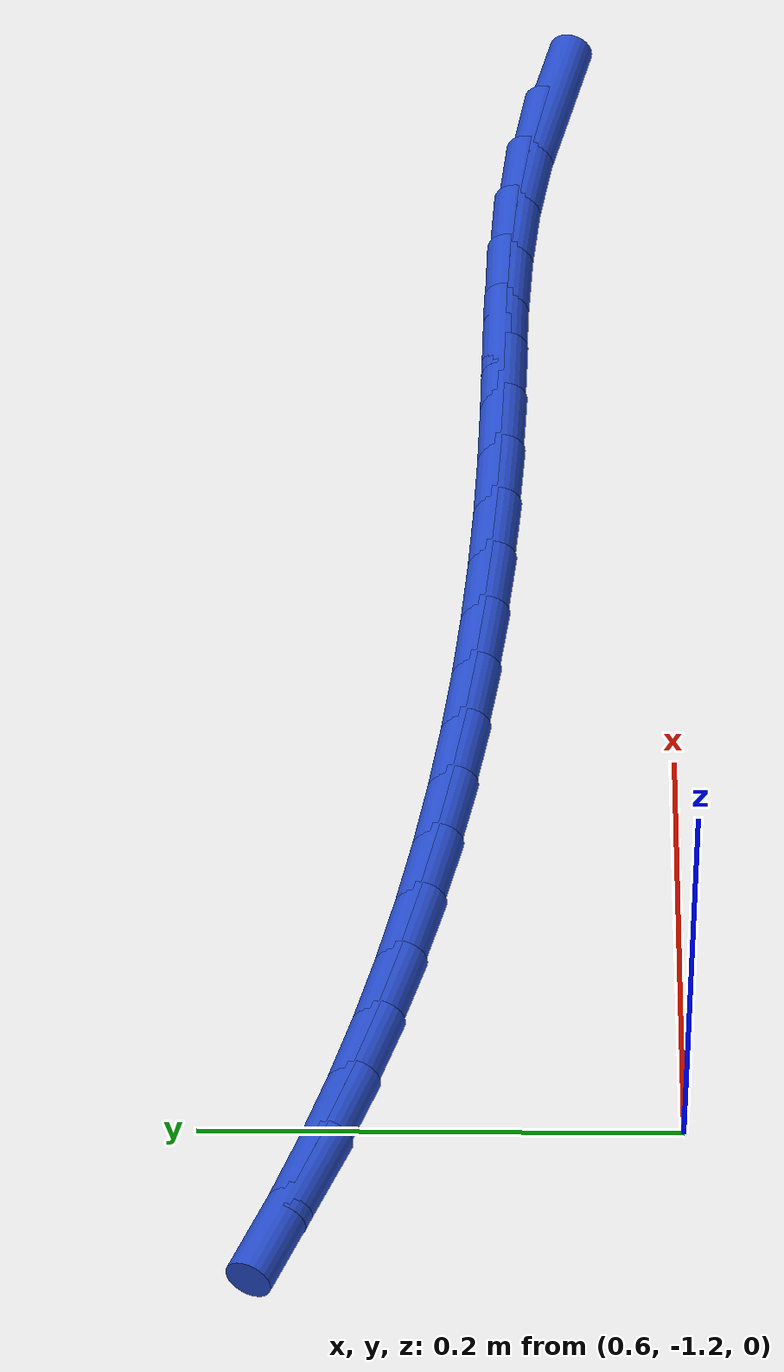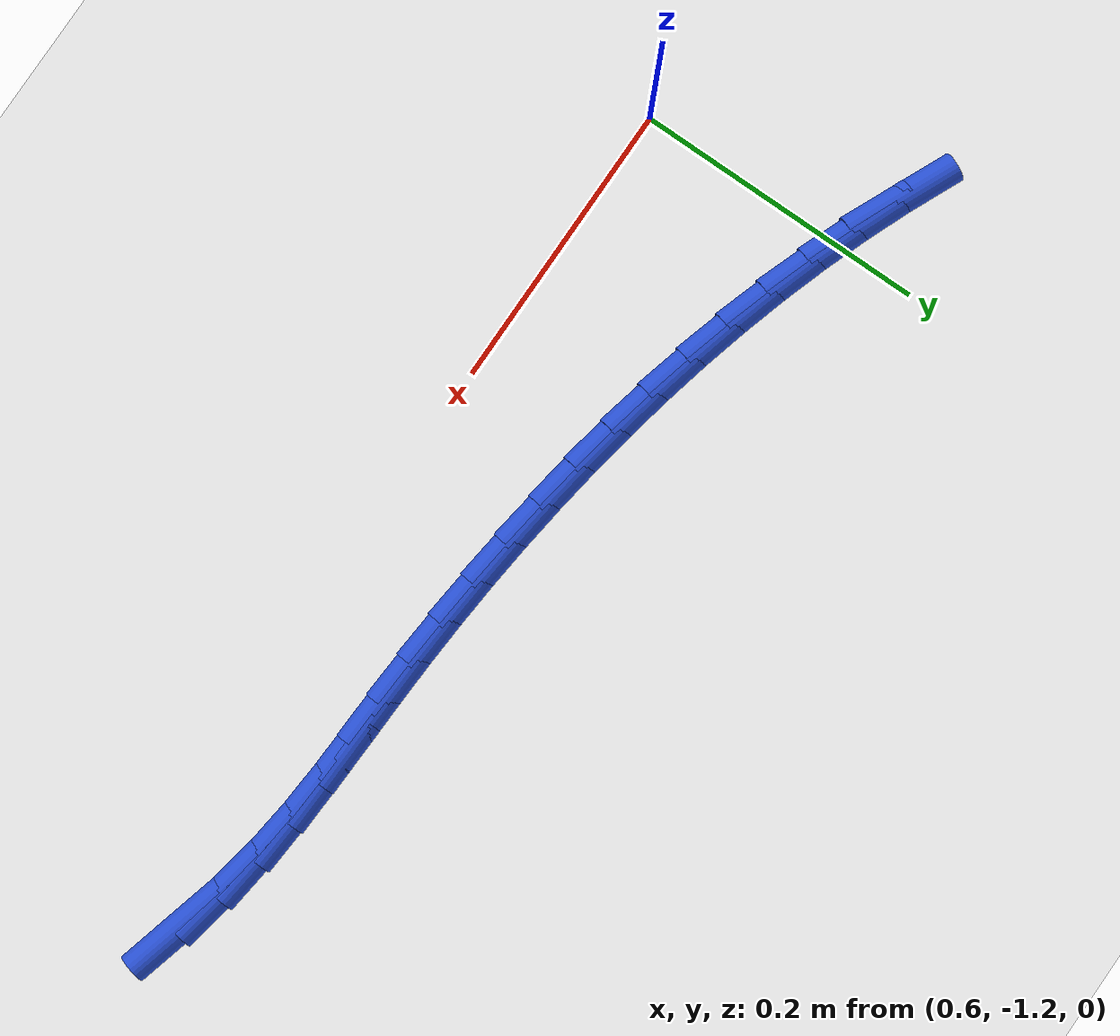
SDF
<sdf version="1.6">
 <world name="default">
  <model name="ground_plane">
   <static>1</static>
   <link name="link">
    <collision name="collision">
     <geometry><plane><normal>0 0 1</normal><size>100 100</size></plane></geometry>
     <surface><friction><ode><mu>100</mu><mu2>50</mu2></ode></friction></surface>
    </collision>
    <visual name="visual">
     <cast_shadows>0</cast_shadows>
     <geometry><plane><normal>0 0 1</normal><size>100 100</size></plane></geometry>
     <material>
      <script><uri>file://media/materials/scripts/gazebo.material</uri><name>Gazebo/WhiteGlow</name></script>
     </material>
    </visual>
   </link>
  </model>
  <model name="line">
   <link name="link_192">
    <pose>1.1886813940478667 -1.150262956783005 0.01 0 1.57 -0.2552626584688657</pose>
    <collision name="collision">
     <geometry><cylinder><radius>0.01</radius><length>0.08</length></cylinder></geometry>
    </collision>
    <visual name="visual">
     <material>
      <script><name>Gazebo/Blue</name><uri>file://media/materials/scripts/gazebo.material</uri></script>
     </material>
     <geometry><cylinder><radius>0.01</radius><length>0.08</length></cylinder></geometry>
    </visual>
   </link>
   <link name="link_193">
    <pose>1.1543357410519695 -1.1413002766937062 0.01 0 1.57 -0.180400062615272</pose>
    <collision name="collision">
     <geometry><cylinder><radius>0.01</radius><length>0.08</length></cylinder></geometry>
    </collision>
    <visual name="visual">
     <material>
      <script><name>Gazebo/Blue</name><uri>file://media/materials/scripts/gazebo.material</uri></script>
     </material>
     <geometry><cylinder><radius>0.01</radius><length>0.08</length></cylinder></geometry>
    </visual>
   </link>
   <link name="link_194">
    <pose>1.121331490273652 -1.135280866747379 0.01 0 1.57 -0.1165325160379313</pose>
    <collision name="collision">
     <geometry><cylinder><radius>0.01</radius><length>0.08</length></cylinder></geometry>
    </collision>
    <visual name="visual">
     <material>
      <script><name>Gazebo/Blue</name><uri>file://media/materials/scripts/gazebo.material</uri></script>
     </material>
     <geometry><cylinder><radius>0.01</radius><length>0.08</length></cylinder></geometry>
    </visual>
   </link>
   <link name="link_195">
    <pose>1.0893490187320463 -1.1315369060602518 0.01 0 1.57 -0.06819048947828085</pose>
    <collision name="collision">
     <geometry><cylinder><radius>0.01</radius><length>0.08</length></cylinder></geometry>
    </collision>
    <visual name="visual">
     <material>
      <script><name>Gazebo/Blue</name><uri>file://media/materials/scripts/gazebo.material</uri></script>
     </material>
     <geometry><cylinder><radius>0.01</radius><length>0.08</length></cylinder></geometry>
    </visual>
   </link>
   <link name="link_196">
    <pose>1.0580687034462841 -1.1294005737485537 0.01 0 1.57 -0.03870592510255532</pose>
    <collision name="collision">
     <geometry><cylinder><radius>0.01</radius><length>0.08</length></cylinder></geometry>
    </collision>
    <visual name="visual">
     <material>
      <script><name>Gazebo/Blue</name><uri>file://media/materials/scripts/gazebo.material</uri></script>
     </material>
     <geometry><cylinder><radius>0.01</radius><length>0.08</length></cylinder></geometry>
    </visual>
   </link>
   <link name="link_197">
    <pose>1.027170921435497 -1.1282040489285121 0.01 0 1.57 -0.029974546774439687</pose>
    <collision name="collision">
     <geometry><cylinder><radius>0.01</radius><length>0.08</length></cylinder></geometry>
    </collision>
    <visual name="visual">
     <material>
      <script><name>Gazebo/Blue</name><uri>file://media/materials/scripts/gazebo.material</uri></script>
     </material>
     <geometry><cylinder><radius>0.01</radius><length>0.08</length></cylinder></geometry>
    </visual>
   </link>
   <link name="link_198">
    <pose>0.9963360497188172 -1.1272795107163562 0.01 0 1.57 -0.04132637685410862</pose>
    <collision name="collision">
     <geometry><cylinder><radius>0.01</radius><length>0.08</length></cylinder></geometry>
    </collision>
    <visual name="visual">
     <material>
      <script><name>Gazebo/Blue</name><uri>file://media/materials/scripts/gazebo.material</uri></script>
     </material>
     <geometry><cylinder><radius>0.01</radius><length>0.08</length></cylinder></geometry>
    </visual>
   </link>
   <link name="link_199">
    <pose>0.965265778211779 -1.1259947574868887 0.01 0 1.57 -0.06065985437152102</pose>
    <collision name="collision">
     <geometry><cylinder><radius>0.01</radius><length>0.08</length></cylinder></geometry>
    </collision>
    <visual name="visual">
     <material>
      <script><name>Gazebo/Blue</name><uri>file://media/materials/scripts/gazebo.material</uri></script>
     </material>
     <geometry><cylinder><radius>0.01</radius><length>0.08</length></cylinder></geometry>
    </visual>
   </link>
   <link name="link_200">
    <pose>0.9338839128167312 -1.1240887997964213 0.01 0 1.57 -0.08097760928714258</pose>
    <collision name="collision">
     <geometry><cylinder><radius>0.01</radius><length>0.08</length></cylinder></geometry>
    </collision>
    <visual name="visual">
     <material>
      <script><name>Gazebo/Blue</name><uri>file://media/materials/scripts/gazebo.material</uri></script>
     </material>
     <geometry><cylinder><radius>0.01</radius><length>0.08</length></cylinder></geometry>
    </visual>
   </link>
   <link name="link_201">
    <pose>0.9022462531259806 -1.1215212431539194 0.01 0 1.57 -0.1022506918384899</pose>
    <collision name="collision">
     <geometry><cylinder><radius>0.01</radius><length>0.08</length></cylinder></geometry>
    </collision>
    <visual name="visual">
     <material>
      <script><name>Gazebo/Blue</name><uri>file://media/materials/scripts/gazebo.material</uri></script>
     </material>
     <geometry><cylinder><radius>0.01</radius><length>0.08</length></cylinder></geometry>
    </visual>
   </link>
   <link name="link_202">
    <pose>0.8704103421985019 -1.118254606843598 0.01 0 1.57 -0.12454341411067339</pose>
    <collision name="collision">
     <geometry><cylinder><radius>0.01</radius><length>0.08</length></cylinder></geometry>
    </collision>
    <visual name="visual">
     <material>
      <script><name>Gazebo/Blue</name><uri>file://media/materials/scripts/gazebo.material</uri></script>
     </material>
     <geometry><cylinder><radius>0.01</radius><length>0.08</length></cylinder></geometry>
    </visual>
   </link>
   <link name="link_203">
    <pose>0.8384337230932695 -1.1142514101496723 0.01 0 1.57 -0.1479218773052417</pose>
    <collision name="collision">
     <geometry><cylinder><radius>0.01</radius><length>0.08</length></cylinder></geometry>
    </collision>
    <visual name="visual">
     <material>
      <script><name>Gazebo/Blue</name><uri>file://media/materials/scripts/gazebo.material</uri></script>
     </material>
     <geometry><cylinder><radius>0.01</radius><length>0.08</length></cylinder></geometry>
    </visual>
   </link>
   <link name="link_204">
    <pose>0.8063739388692577 -1.1094741723563573 0.01 0 1.57 -0.1724536591377894</pose>
    <collision name="collision">
     <geometry><cylinder><radius>0.01</radius><length>0.08</length></cylinder></geometry>
    </collision>
    <visual name="visual">
     <material>
      <script><name>Gazebo/Blue</name><uri>file://media/materials/scripts/gazebo.material</uri></script>
     </material>
     <geometry><cylinder><radius>0.01</radius><length>0.08</length></cylinder></geometry>
    </visual>
   </link>
   <link name="link_205">
    <pose>0.7742885325854414 -1.1038854127478683 0.01 0 1.57 -0.19820732452280015</pose>
    <collision name="collision">
     <geometry><cylinder><radius>0.01</radius><length>0.08</length></cylinder></geometry>
    </collision>
    <visual name="visual">
     <material>
      <script><name>Gazebo/Blue</name><uri>file://media/materials/scripts/gazebo.material</uri></script>
     </material>
     <geometry><cylinder><radius>0.01</radius><length>0.08</length></cylinder></geometry>
    </visual>
   </link>
   <link name="link_206">
    <pose>0.7422350473007947 -1.0974476506084205 0.01 0 1.57 -0.22525172722043452</pose>
    <collision name="collision">
     <geometry><cylinder><radius>0.01</radius><length>0.08</length></cylinder></geometry>
    </collision>
    <visual name="visual">
     <material>
      <script><name>Gazebo/Blue</name><uri>file://media/materials/scripts/gazebo.material</uri></script>
     </material>
     <geometry><cylinder><radius>0.01</radius><length>0.08</length></cylinder></geometry>
    </visual>
   </link>
   <link name="link_207">
    <pose>0.7102710260742923 -1.0901234052222288 0.01 0 1.57 -0.25365506645905933</pose>
    <collision name="collision">
     <geometry><cylinder><radius>0.01</radius><length>0.08</length></cylinder></geometry>
    </collision>
    <visual name="visual">
     <material>
      <script><name>Gazebo/Blue</name><uri>file://media/materials/scripts/gazebo.material</uri></script>
     </material>
     <geometry><cylinder><radius>0.01</radius><length>0.08</length></cylinder></geometry>
    </visual>
   </link>
   <link name="link_208">
    <pose>0.6784540119649082 -1.0818751958735082 0.01 0 1.57 -0.28348366070245007</pose>
    <collision name="collision">
     <geometry><cylinder><radius>0.01</radius><length>0.08</length></cylinder></geometry>
    </collision>
    <visual name="visual">
     <material>
      <script><name>Gazebo/Blue</name><uri>file://media/materials/scripts/gazebo.material</uri></script>
     </material>
     <geometry><cylinder><radius>0.01</radius><length>0.08</length></cylinder></geometry>
    </visual>
   </link>
   <link name="link_209">
    <pose>0.6468415480316183 -1.0726655418464746 0.01 0 1.57 -0.314800401786797</pose>
    <collision name="collision">
     <geometry><cylinder><radius>0.01</radius><length>0.08</length></cylinder></geometry>
    </collision>
    <visual name="visual">
     <material>
      <script><name>Gazebo/Blue</name><uri>file://media/materials/scripts/gazebo.material</uri></script>
     </material>
     <geometry><cylinder><radius>0.01</radius><length>0.08</length></cylinder></geometry>
    </visual>
   </link>
   <link name="link_210">
    <pose>0.6154911773333949 -1.0624569624253422 0.01 0 1.57 -0.34766304865699915</pose>
    <collision name="collision">
     <geometry><cylinder><radius>0.01</radius><length>0.08</length></cylinder></geometry>
    </collision>
    <visual name="visual">
     <material>
      <script><name>Gazebo/Blue</name><uri>file://media/materials/scripts/gazebo.material</uri></script>
     </material>
     <geometry><cylinder><radius>0.01</radius><length>0.08</length></cylinder></geometry>
    </visual>
   </link>
   <link name="link_211">
    <pose>0.5844604587620186 -1.0512119759394467 0.01 0 1.57 -0.38238449006679043</pose>
    <collision name="collision">
     <geometry><cylinder><radius>0.01</radius><length>0.08</length></cylinder></geometry>
    </collision>
    <visual name="visual">
     <material>
      <script><name>Gazebo/Blue</name><uri>file://media/materials/scripts/gazebo.material</uri></script>
     </material>
     <geometry><cylinder><radius>0.01</radius><length>0.08</length></cylinder></geometry>
    </visual>
   </link>
   <link name="link_212">
    <pose>0.5538271898001058 -1.0388918801242601 0.01 0 1.57 -0.41990365835865373</pose>
    <collision name="collision">
     <geometry><cylinder><radius>0.01</radius><length>0.08</length></cylinder></geometry>
    </collision>
    <visual name="visual">
     <material>
      <script><name>Gazebo/Blue</name><uri>file://media/materials/scripts/gazebo.material</uri></script>
     </material>
     <geometry><cylinder><radius>0.01</radius><length>0.08</length></cylinder></geometry>
    </visual>
   </link>
  </model>
 </world>
</sdf>
